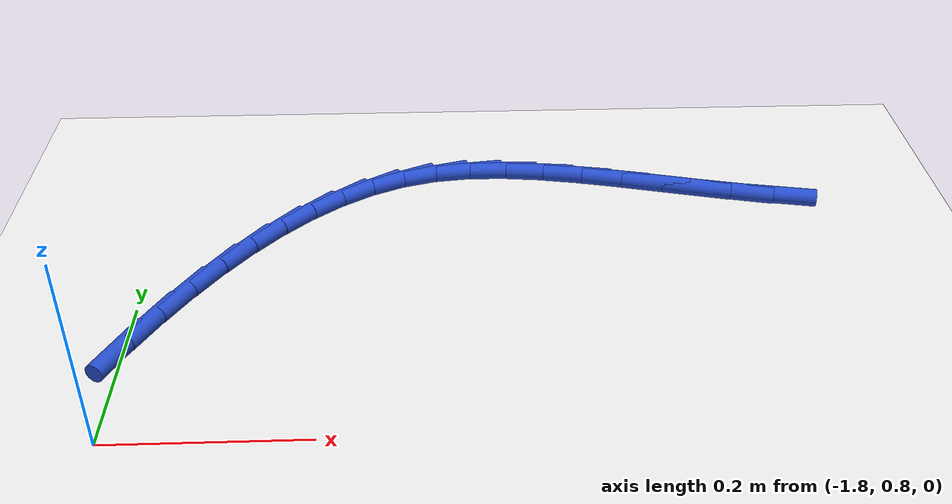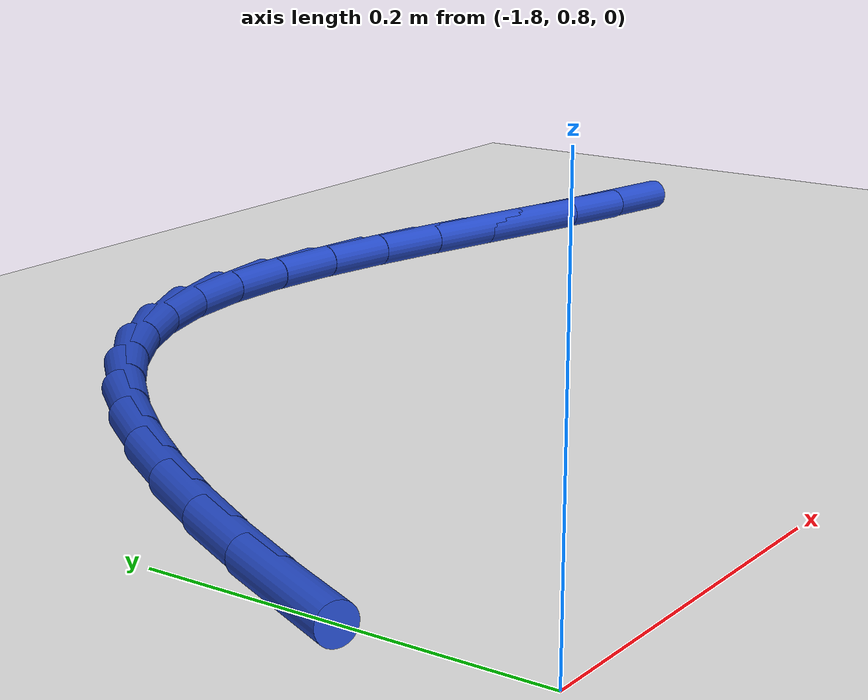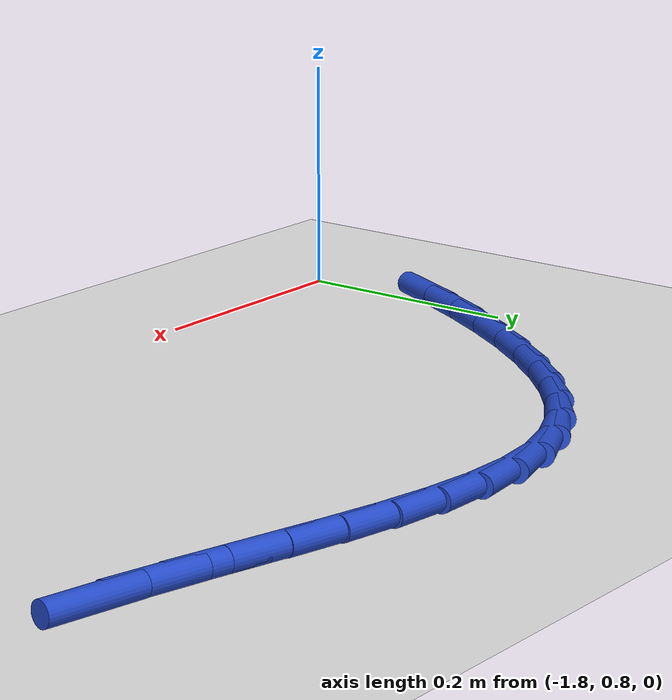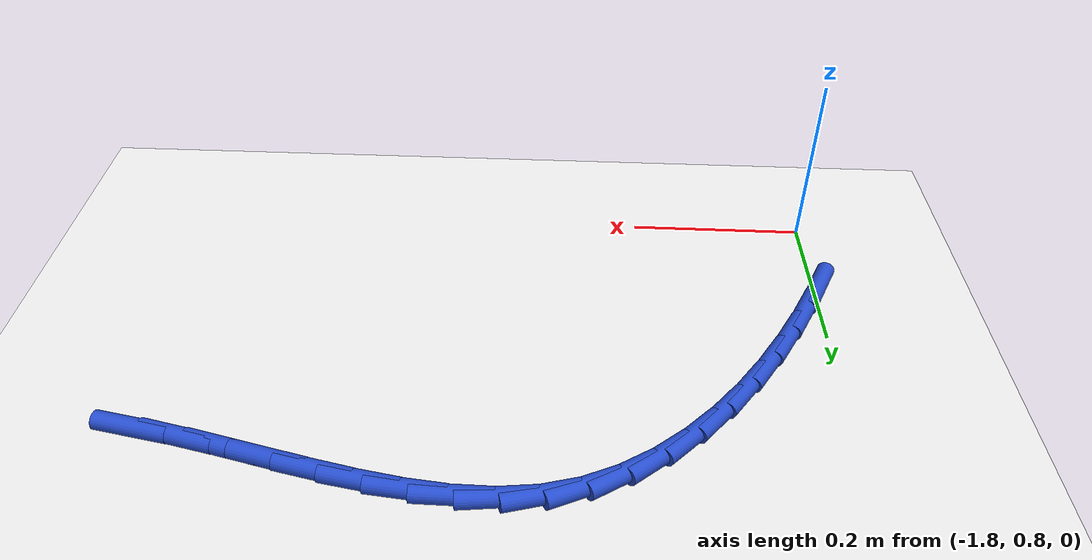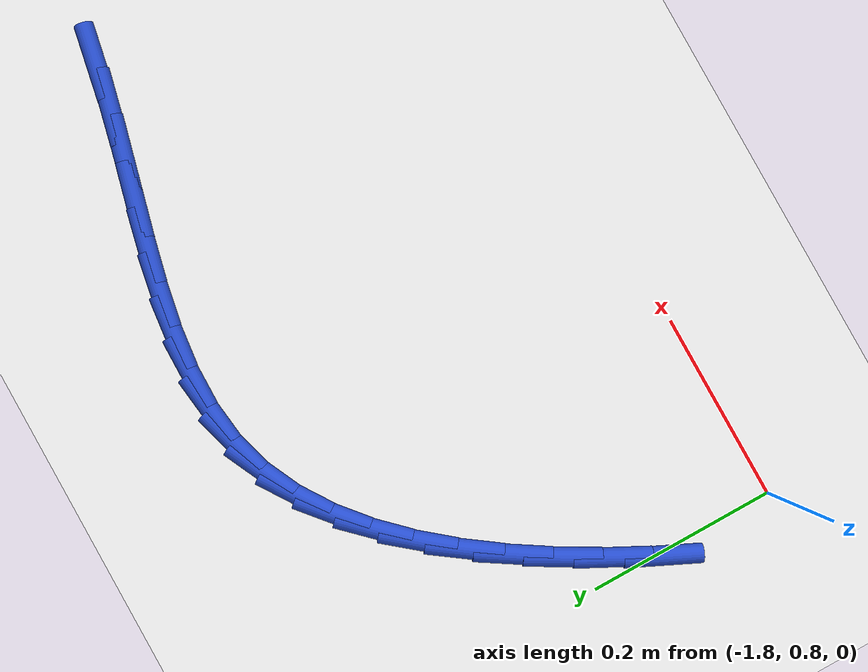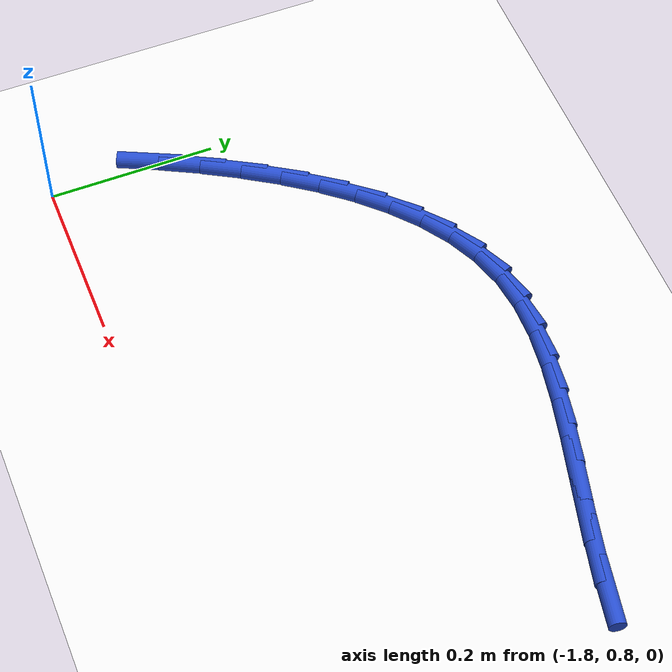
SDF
<sdf version="1.6">
 <world name="default">
  <model name="ground_plane">
   <static>1</static>
   <link name="link">
    <collision name="collision">
     <geometry><plane><normal>0 0 1</normal><size>100 100</size></plane></geometry>
     <surface><friction><ode><mu>100</mu><mu2>50</mu2></ode></friction></surface>
    </collision>
    <visual name="visual">
     <cast_shadows>0</cast_shadows>
     <geometry><plane><normal>0 0 1</normal><size>100 100</size></plane></geometry>
     <material>
      <script><uri>file://media/materials/scripts/gazebo.material</uri><name>Gazebo/WhiteGlow</name></script>
     </material>
    </visual>
   </link>
  </model>
  <model name="line">
   <link name="link_38">
    <pose>-1.0867094646149853 1.1827910498977499 0.01 0 1.57 -0.1938952540323659</pose>
    <collision name="collision">
     <geometry><cylinder><radius>0.01</radius><length>0.08</length></cylinder></geometry>
    </collision>
    <visual name="visual">
     <material>
      <script><name>Gazebo/Blue</name><uri>file://media/materials/scripts/gazebo.material</uri></script>
     </material>
     <geometry><cylinder><radius>0.01</radius><length>0.08</length></cylinder></geometry>
    </visual>
   </link>
   <link name="link_39">
    <pose>-1.134613542390609 1.1921976006581778 0.01 0 1.57 -0.231873636968326</pose>
    <collision name="collision">
     <geometry><cylinder><radius>0.01</radius><length>0.08</length></cylinder></geometry>
    </collision>
    <visual name="visual">
     <material>
      <script><name>Gazebo/Blue</name><uri>file://media/materials/scripts/gazebo.material</uri></script>
     </material>
     <geometry><cylinder><radius>0.01</radius><length>0.08</length></cylinder></geometry>
    </visual>
   </link>
   <link name="link_40">
    <pose>-1.1821419594120144 1.2034200384155798 0.01 0 1.57 -0.25015247729503914</pose>
    <collision name="collision">
     <geometry><cylinder><radius>0.01</radius><length>0.08</length></cylinder></geometry>
    </collision>
    <visual name="visual">
     <material>
      <script><name>Gazebo/Blue</name><uri>file://media/materials/scripts/gazebo.material</uri></script>
     </material>
     <geometry><cylinder><radius>0.01</radius><length>0.08</length></cylinder></geometry>
    </visual>
   </link>
   <link name="link_41">
    <pose>-1.2291357351529062 1.2154271523656763 0.01 0 1.57 -0.24874671453014993</pose>
    <collision name="collision">
     <geometry><cylinder><radius>0.01</radius><length>0.08</length></cylinder></geometry>
    </collision>
    <visual name="visual">
     <material>
      <script><name>Gazebo/Blue</name><uri>file://media/materials/scripts/gazebo.material</uri></script>
     </material>
     <geometry><cylinder><radius>0.01</radius><length>0.08</length></cylinder></geometry>
    </visual>
   </link>
   <link name="link_42">
    <pose>-1.275435889086986 1.2271877317041868 0.01 0 1.57 -0.22669308341764077</pose>
    <collision name="collision">
     <geometry><cylinder><radius>0.01</radius><length>0.08</length></cylinder></geometry>
    </collision>
    <visual name="visual">
     <material>
      <script><name>Gazebo/Blue</name><uri>file://media/materials/scripts/gazebo.material</uri></script>
     </material>
     <geometry><cylinder><radius>0.01</radius><length>0.08</length></cylinder></geometry>
    </visual>
   </link>
   <link name="link_43">
    <pose>-1.3208834406879577 1.2376705656268328 0.01 0 1.57 -0.1819137380299662</pose>
    <collision name="collision">
     <geometry><cylinder><radius>0.01</radius><length>0.08</length></cylinder></geometry>
    </collision>
    <visual name="visual">
     <material>
      <script><name>Gazebo/Blue</name><uri>file://media/materials/scripts/gazebo.material</uri></script>
     </material>
     <geometry><cylinder><radius>0.01</radius><length>0.08</length></cylinder></geometry>
    </visual>
   </link>
   <link name="link_44">
    <pose>-1.3653194094295258 1.2458444433293347 0.01 0 1.57 -0.11126091782519251</pose>
    <collision name="collision">
     <geometry><cylinder><radius>0.01</radius><length>0.08</length></cylinder></geometry>
    </collision>
    <visual name="visual">
     <material>
      <script><name>Gazebo/Blue</name><uri>file://media/materials/scripts/gazebo.material</uri></script>
     </material>
     <geometry><cylinder><radius>0.01</radius><length>0.08</length></cylinder></geometry>
    </visual>
   </link>
   <link name="link_45">
    <pose>-1.4085848147853914 1.2506781540074126 0.01 0 1.57 -0.011024314354179412</pose>
    <collision name="collision">
     <geometry><cylinder><radius>0.01</radius><length>0.08</length></cylinder></geometry>
    </collision>
    <visual name="visual">
     <material>
      <script><name>Gazebo/Blue</name><uri>file://media/materials/scripts/gazebo.material</uri></script>
     </material>
     <geometry><cylinder><radius>0.01</radius><length>0.08</length></cylinder></geometry>
    </visual>
   </link>
   <link name="link_46">
    <pose>-1.45052067622926 1.2511404868567872 0.01 0 1.57 0.12153844991575335</pose>
    <collision name="collision">
     <geometry><cylinder><radius>0.01</radius><length>0.08</length></cylinder></geometry>
    </collision>
    <visual name="visual">
     <material>
      <script><name>Gazebo/Blue</name><uri>file://media/materials/scripts/gazebo.material</uri></script>
     </material>
     <geometry><cylinder><radius>0.01</radius><length>0.08</length></cylinder></geometry>
    </visual>
   </link>
   <link name="link_47">
    <pose>-1.4909680132348333 1.2462002310731795 0.01 0 1.57 0.28374294347376755</pose>
    <collision name="collision">
     <geometry><cylinder><radius>0.01</radius><length>0.08</length></cylinder></geometry>
    </collision>
    <visual name="visual">
     <material>
      <script><name>Gazebo/Blue</name><uri>file://media/materials/scripts/gazebo.material</uri></script>
     </material>
     <geometry><cylinder><radius>0.01</radius><length>0.08</length></cylinder></geometry>
    </visual>
   </link>
   <link name="link_48">
    <pose>-1.5297729824271022 1.2348842694154576 0.01 0 1.57 0.4464500116357379</pose>
    <collision name="collision">
     <geometry><cylinder><radius>0.01</radius><length>0.08</length></cylinder></geometry>
    </collision>
    <visual name="visual">
     <material>
      <script><name>Gazebo/Blue</name><uri>file://media/materials/scripts/gazebo.material</uri></script>
     </material>
     <geometry><cylinder><radius>0.01</radius><length>0.08</length></cylinder></geometry>
    </visual>
   </link>
   <link name="link_49">
    <pose>-1.5668622750144519 1.2171302113556084 0.01 0 1.57 0.587130415299889</pose>
    <collision name="collision">
     <geometry><cylinder><radius>0.01</radius><length>0.08</length></cylinder></geometry>
    </collision>
    <visual name="visual">
     <material>
      <script><name>Gazebo/Blue</name><uri>file://media/materials/scripts/gazebo.material</uri></script>
     </material>
     <geometry><cylinder><radius>0.01</radius><length>0.08</length></cylinder></geometry>
    </visual>
   </link>
   <link name="link_50">
    <pose>-1.6022265088916494 1.1935985823914308 0.01 0 1.57 0.7052177996515869</pose>
    <collision name="collision">
     <geometry><cylinder><radius>0.01</radius><length>0.08</length></cylinder></geometry>
    </collision>
    <visual name="visual">
     <material>
      <script><name>Gazebo/Blue</name><uri>file://media/materials/scripts/gazebo.material</uri></script>
     </material>
     <geometry><cylinder><radius>0.01</radius><length>0.08</length></cylinder></geometry>
    </visual>
   </link>
   <link name="link_51">
    <pose>-1.6358580618890879 1.1649698102828205 0.01 0 1.57 0.8031710921837236</pose>
    <collision name="collision">
     <geometry><cylinder><radius>0.01</radius><length>0.08</length></cylinder></geometry>
    </collision>
    <visual name="visual">
     <material>
      <script><name>Gazebo/Blue</name><uri>file://media/materials/scripts/gazebo.material</uri></script>
     </material>
     <geometry><cylinder><radius>0.01</radius><length>0.08</length></cylinder></geometry>
    </visual>
   </link>
   <link name="link_52">
    <pose>-1.667749311837157 1.131924322789673 0.01 0 1.57 0.8842669870918348</pose>
    <collision name="collision">
     <geometry><cylinder><radius>0.01</radius><length>0.08</length></cylinder></geometry>
    </collision>
    <visual name="visual">
     <material>
      <script><name>Gazebo/Blue</name><uri>file://media/materials/scripts/gazebo.material</uri></script>
     </material>
     <geometry><cylinder><radius>0.01</radius><length>0.08</length></cylinder></geometry>
    </visual>
   </link>
   <link name="link_53">
    <pose>-1.6978926365662494 1.0951425476718832 0.01 0 1.57 0.9516726267059107</pose>
    <collision name="collision">
     <geometry><cylinder><radius>0.01</radius><length>0.08</length></cylinder></geometry>
    </collision>
    <visual name="visual">
     <material>
      <script><name>Gazebo/Blue</name><uri>file://media/materials/scripts/gazebo.material</uri></script>
     </material>
     <geometry><cylinder><radius>0.01</radius><length>0.08</length></cylinder></geometry>
    </visual>
   </link>
   <link name="link_54">
    <pose>-1.7262804139067571 1.0553049126893481 0.01 0 1.57 1.0080946264466348</pose>
    <collision name="collision">
     <geometry><cylinder><radius>0.01</radius><length>0.08</length></cylinder></geometry>
    </collision>
    <visual name="visual">
     <material>
      <script><name>Gazebo/Blue</name><uri>file://media/materials/scripts/gazebo.material</uri></script>
     </material>
     <geometry><cylinder><radius>0.01</radius><length>0.08</length></cylinder></geometry>
    </visual>
   </link>
   <link name="link_55">
    <pose>-1.7529050216890711 1.0130918456019617 0.01 0 1.57 1.0557202202327656</pose>
    <collision name="collision">
     <geometry><cylinder><radius>0.01</radius><length>0.08</length></cylinder></geometry>
    </collision>
    <visual name="visual">
     <material>
      <script><name>Gazebo/Blue</name><uri>file://media/materials/scripts/gazebo.material</uri></script>
     </material>
     <geometry><cylinder><radius>0.01</radius><length>0.08</length></cylinder></geometry>
    </visual>
   </link>
   <link name="link_56">
    <pose>-1.7777588377435833 0.9691837741696199 0.01 0 1.57 1.0962728740174488</pose>
    <collision name="collision">
     <geometry><cylinder><radius>0.01</radius><length>0.08</length></cylinder></geometry>
    </collision>
    <visual name="visual">
     <material>
      <script><name>Gazebo/Blue</name><uri>file://media/materials/scripts/gazebo.material</uri></script>
     </material>
     <geometry><cylinder><radius>0.01</radius><length>0.08</length></cylinder></geometry>
    </visual>
   </link>
   <link name="link_57">
    <pose>-1.8008342399006858 0.9242611261522187 0.01 0 1.57 1.1310975707498057</pose>
    <collision name="collision">
     <geometry><cylinder><radius>0.01</radius><length>0.08</length></cylinder></geometry>
    </collision>
    <visual name="visual">
     <material>
      <script><name>Gazebo/Blue</name><uri>file://media/materials/scripts/gazebo.material</uri></script>
     </material>
     <geometry><cylinder><radius>0.01</radius><length>0.08</length></cylinder></geometry>
    </visual>
   </link>
  </model>
 </world>
</sdf>
